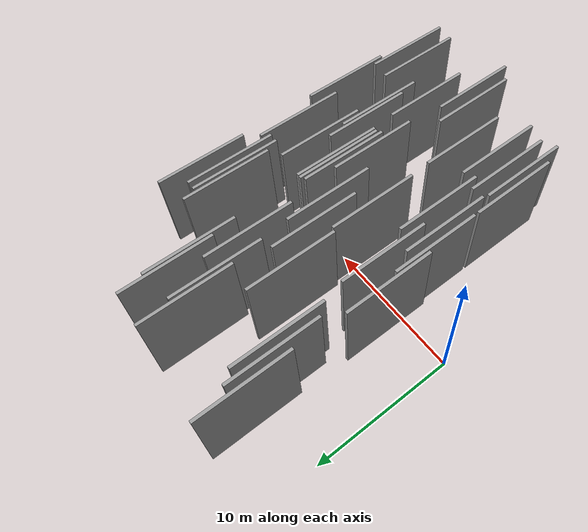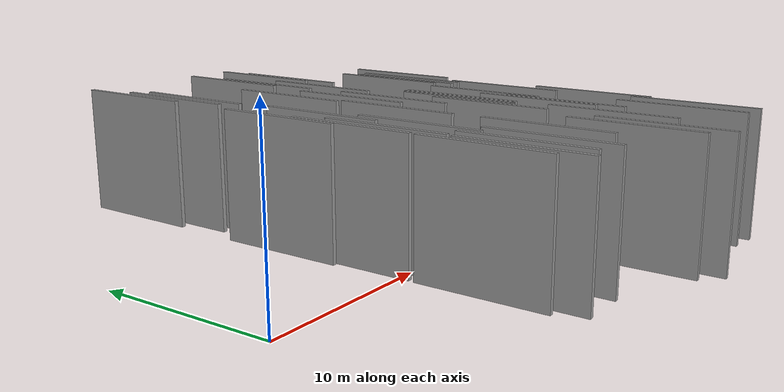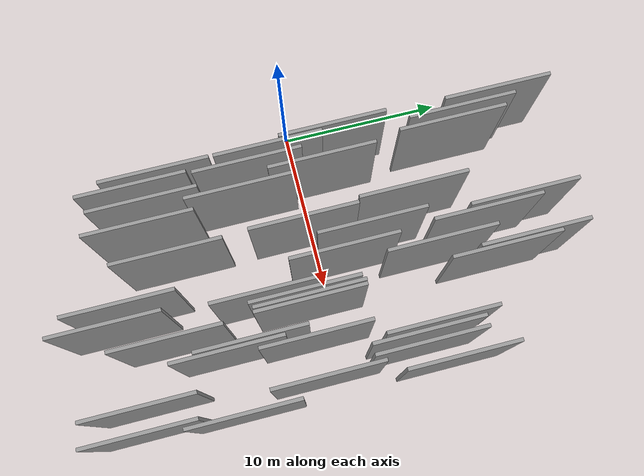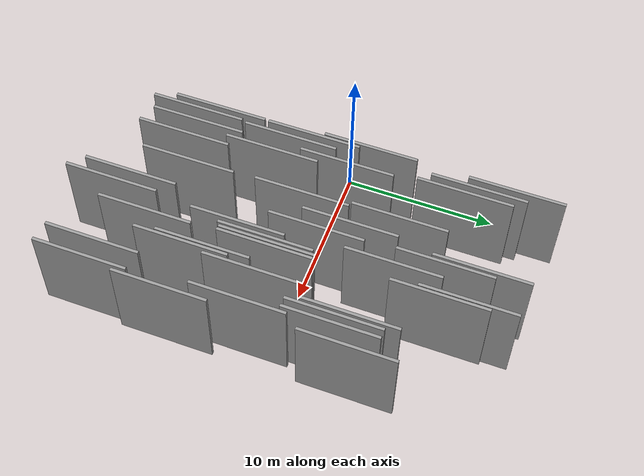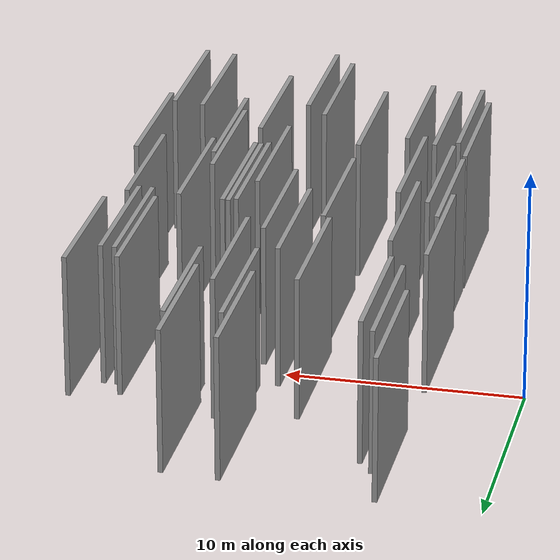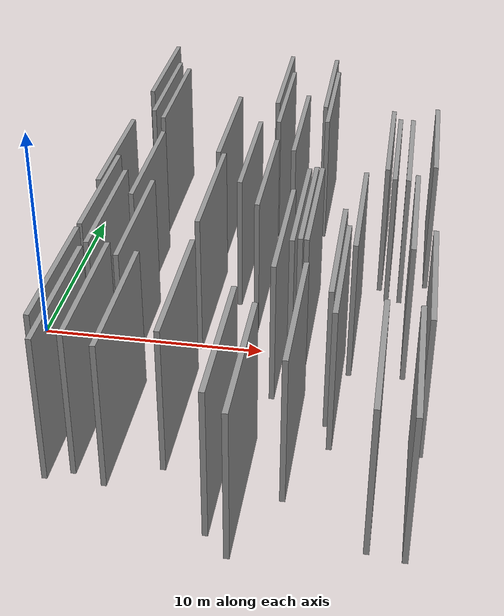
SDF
<sdf version="1.6">
 <world name="default">
  <scene>
   <sky><clouds><speed>12</speed></clouds></sky>
   <ambient>0.4 0.4 0.4 1</ambient>
   <background>0.7 0.7 0.7 1</background>
   <shadows>1</shadows>
  </scene>
  <gravity>0 0 -9.8066</gravity>
  <magnetic_field>6e-06 2.3e-05 -4.2e-05</magnetic_field>
  <physics default="0" name="default_physics" type="ode">
   <ode>
    <solver>
     <type>quick</type>
     <iters>10</iters>
     <sor>1.0</sor>
     <use_dynamic_moi_rescaling>0</use_dynamic_moi_rescaling>
    </solver>
    <constraints>
     <cfm>0</cfm>
     <erp>0.2</erp>
     <contact_max_correcting_vel>100</contact_max_correcting_vel>
     <contact_surface_layer>0.001</contact_surface_layer>
    </constraints>
   </ode>
   <max_step_size>0.004</max_step_size>
   <real_time_factor>1</real_time_factor>
   <real_time_update_rate>250</real_time_update_rate>
  </physics>
  <light name="sun" type="directional">
   <pose>0 0 10 0 0 0</pose>
   <diffuse>0.8 0.8 0.8 1</diffuse>
   <specular>0.2 0.2 0.2 1</specular>
   <attenuation>
    <range>1000</range>
    <constant>0.9</constant>
    <linear>0.01</linear>
    <quadratic>0.001</quadratic>
   </attenuation>
   <direction>-0.5 0.1 -0.9</direction>
  </light>
  <model name="grey_wall_1">
   <static>1</static>
   <pose>11.6903 -1.4165 2.5 0.000000 0.000000 1.570796</pose>
   <link name="link">
    <pose>0 0 3.00 0 0 0</pose>
    <collision name="collision"><geometry><box><size>6.00 0.2 6.00</size></box></geometry></collision>
    <visual name="visual">
     <cast_shadows>0</cast_shadows>
     <geometry><box><size>6.00 0.2 6.00</size></box></geometry>
     <material>
      <script>
       <uri>model://grey_wall/materials/scripts</uri>
       <uri>model://grey_wall/materials/textures</uri>
       <name>vrc/grey_wall</name>
      </script>
     </material>
    </visual>
   </link>
  </model>
  <model name="grey_wall_2">
   <static>1</static>
   <pose>12.2253 -1.2683 2.5 0.000000 0.000000 1.570796</pose>
   <link name="link">
    <pose>0 0 3.00 0 0 0</pose>
    <collision name="collision"><geometry><box><size>6.00 0.2 6.00</size></box></geometry></collision>
    <visual name="visual">
     <cast_shadows>0</cast_shadows>
     <geometry><box><size>6.00 0.2 6.00</size></box></geometry>
     <material>
      <script>
       <uri>model://grey_wall/materials/scripts</uri>
       <uri>model://grey_wall/materials/textures</uri>
       <name>vrc/grey_wall</name>
      </script>
     </material>
    </visual>
   </link>
  </model>
  <model name="grey_wall_3">
   <static>1</static>
   <pose>14.9225 4.9758 2.5 0.000000 0.000000 1.570796</pose>
   <link name="link">
    <pose>0 0 3.00 0 0 0</pose>
    <collision name="collision"><geometry><box><size>6.00 0.2 6.00</size></box></geometry></collision>
    <visual name="visual">
     <cast_shadows>0</cast_shadows>
     <geometry><box><size>6.00 0.2 6.00</size></box></geometry>
     <material>
      <script>
       <uri>model://grey_wall/materials/scripts</uri>
       <uri>model://grey_wall/materials/textures</uri>
       <name>vrc/grey_wall</name>
      </script>
     </material>
    </visual>
   </link>
  </model>
  <model name="grey_wall_4">
   <static>1</static>
   <pose>8.9996 2.8847 2.5 0.000000 0.000000 1.570796</pose>
   <link name="link">
    <pose>0 0 3.00 0 0 0</pose>
    <collision name="collision"><geometry><box><size>6.00 0.2 6.00</size></box></geometry></collision>
    <visual name="visual">
     <cast_shadows>0</cast_shadows>
     <geometry><box><size>6.00 0.2 6.00</size></box></geometry>
     <material>
      <script>
       <uri>model://grey_wall/materials/scripts</uri>
       <uri>model://grey_wall/materials/textures</uri>
       <name>vrc/grey_wall</name>
      </script>
     </material>
    </visual>
   </link>
  </model>
  <model name="grey_wall_5">
   <static>1</static>
   <pose>11.9767 9.3060 2.5 0.000000 0.000000 1.570796</pose>
   <link name="link">
    <pose>0 0 3.00 0 0 0</pose>
    <collision name="collision"><geometry><box><size>6.00 0.2 6.00</size></box></geometry></collision>
    <visual name="visual">
     <cast_shadows>0</cast_shadows>
     <geometry><box><size>6.00 0.2 6.00</size></box></geometry>
     <material>
      <script>
       <uri>model://grey_wall/materials/scripts</uri>
       <uri>model://grey_wall/materials/textures</uri>
       <name>vrc/grey_wall</name>
      </script>
     </material>
    </visual>
   </link>
  </model>
  <model name="grey_wall_6">
   <static>1</static>
   <pose>16.9105 5.4805 2.5 0.000000 0.000000 1.570796</pose>
   <link name="link">
    <pose>0 0 3.00 0 0 0</pose>
    <collision name="collision"><geometry><box><size>6.00 0.2 6.00</size></box></geometry></collision>
    <visual name="visual">
     <cast_shadows>0</cast_shadows>
     <geometry><box><size>6.00 0.2 6.00</size></box></geometry>
     <material>
      <script>
       <uri>model://grey_wall/materials/scripts</uri>
       <uri>model://grey_wall/materials/textures</uri>
       <name>vrc/grey_wall</name>
      </script>
     </material>
    </visual>
   </link>
  </model>
  <model name="grey_wall_7">
   <static>1</static>
   <pose>10.0815 -10.8257 2.5 0.000000 0.000000 1.570796</pose>
   <link name="link">
    <pose>0 0 3.00 0 0 0</pose>
    <collision name="collision"><geometry><box><size>6.00 0.2 6.00</size></box></geometry></collision>
    <visual name="visual">
     <cast_shadows>0</cast_shadows>
     <geometry><box><size>6.00 0.2 6.00</size></box></geometry>
     <material>
      <script>
       <uri>model://grey_wall/materials/scripts</uri>
       <uri>model://grey_wall/materials/textures</uri>
       <name>vrc/grey_wall</name>
      </script>
     </material>
    </visual>
   </link>
  </model>
  <model name="grey_wall_8">
   <static>1</static>
   <pose>4.5151 8.5991 2.5 0.000000 0.000000 1.570796</pose>
   <link name="link">
    <pose>0 0 3.00 0 0 0</pose>
    <collision name="collision"><geometry><box><size>6.00 0.2 6.00</size></box></geometry></collision>
    <visual name="visual">
     <cast_shadows>0</cast_shadows>
     <geometry><box><size>6.00 0.2 6.00</size></box></geometry>
     <material>
      <script>
       <uri>model://grey_wall/materials/scripts</uri>
       <uri>model://grey_wall/materials/textures</uri>
       <name>vrc/grey_wall</name>
      </script>
     </material>
    </visual>
   </link>
  </model>
  <model name="grey_wall_9">
   <static>1</static>
   <pose>15.8232 4.1198 2.5 0.000000 0.000000 1.570796</pose>
   <link name="link">
    <pose>0 0 3.00 0 0 0</pose>
    <collision name="collision"><geometry><box><size>6.00 0.2 6.00</size></box></geometry></collision>
    <visual name="visual">
     <cast_shadows>0</cast_shadows>
     <geometry><box><size>6.00 0.2 6.00</size></box></geometry>
     <material>
      <script>
       <uri>model://grey_wall/materials/scripts</uri>
       <uri>model://grey_wall/materials/textures</uri>
       <name>vrc/grey_wall</name>
      </script>
     </material>
    </visual>
   </link>
  </model>
  <model name="grey_wall_10">
   <static>1</static>
   <pose>9.4727 11.0734 2.5 0.000000 0.000000 1.570796</pose>
   <link name="link">
    <pose>0 0 3.00 0 0 0</pose>
    <collision name="collision"><geometry><box><size>6.00 0.2 6.00</size></box></geometry></collision>
    <visual name="visual">
     <cast_shadows>0</cast_shadows>
     <geometry><box><size>6.00 0.2 6.00</size></box></geometry>
     <material>
      <script>
       <uri>model://grey_wall/materials/scripts</uri>
       <uri>model://grey_wall/materials/textures</uri>
       <name>vrc/grey_wall</name>
      </script>
     </material>
    </visual>
   </link>
  </model>
  <model name="grey_wall_11">
   <static>1</static>
   <pose>4.1188 -2.7381 2.5 0.000000 0.000000 1.570796</pose>
   <link name="link">
    <pose>0 0 3.00 0 0 0</pose>
    <collision name="collision"><geometry><box><size>6.00 0.2 6.00</size></box></geometry></collision>
    <visual name="visual">
     <cast_shadows>0</cast_shadows>
     <geometry><box><size>6.00 0.2 6.00</size></box></geometry>
     <material>
      <script>
       <uri>model://grey_wall/materials/scripts</uri>
       <uri>model://grey_wall/materials/textures</uri>
       <name>vrc/grey_wall</name>
      </script>
     </material>
    </visual>
   </link>
  </model>
  <model name="grey_wall_12">
   <static>1</static>
   <pose>3.2301 2.2058 2.5 0.000000 0.000000 1.570796</pose>
   <link name="link">
    <pose>0 0 3.00 0 0 0</pose>
    <collision name="collision"><geometry><box><size>6.00 0.2 6.00</size></box></geometry></collision>
    <visual name="visual">
     <cast_shadows>0</cast_shadows>
     <geometry><box><size>6.00 0.2 6.00</size></box></geometry>
     <material>
      <script>
       <uri>model://grey_wall/materials/scripts</uri>
       <uri>model://grey_wall/materials/textures</uri>
       <name>vrc/grey_wall</name>
      </script>
     </material>
    </visual>
   </link>
  </model>
  <model name="grey_wall_13">
   <static>1</static>
   <pose>10.9553 -11.7055 2.5 0.000000 0.000000 1.570796</pose>
   <link name="link">
    <pose>0 0 3.00 0 0 0</pose>
    <collision name="collision"><geometry><box><size>6.00 0.2 6.00</size></box></geometry></collision>
    <visual name="visual">
     <cast_shadows>0</cast_shadows>
     <geometry><box><size>6.00 0.2 6.00</size></box></geometry>
     <material>
      <script>
       <uri>model://grey_wall/materials/scripts</uri>
       <uri>model://grey_wall/materials/textures</uri>
       <name>vrc/grey_wall</name>
      </script>
     </material>
    </visual>
   </link>
  </model>
  <model name="grey_wall_14">
   <static>1</static>
   <pose>11.2573 -3.3548 2.5 0.000000 0.000000 1.570796</pose>
   <link name="link">
    <pose>0 0 3.00 0 0 0</pose>
    <collision name="collision"><geometry><box><size>6.00 0.2 6.00</size></box></geometry></collision>
    <visual name="visual">
     <cast_shadows>0</cast_shadows>
     <geometry><box><size>6.00 0.2 6.00</size></box></geometry>
     <material>
      <script>
       <uri>model://grey_wall/materials/scripts</uri>
       <uri>model://grey_wall/materials/textures</uri>
       <name>vrc/grey_wall</name>
      </script>
     </material>
    </visual>
   </link>
  </model>
  <model name="grey_wall_15">
   <static>1</static>
   <pose>3.3561 11.4859 2.5 0.000000 0.000000 1.570796</pose>
   <link name="link">
    <pose>0 0 3.00 0 0 0</pose>
    <collision name="collision"><geometry><box><size>6.00 0.2 6.00</size></box></geometry></collision>
    <visual name="visual">
     <cast_shadows>0</cast_shadows>
     <geometry><box><size>6.00 0.2 6.00</size></box></geometry>
     <material>
      <script>
       <uri>model://grey_wall/materials/scripts</uri>
       <uri>model://grey_wall/materials/textures</uri>
       <name>vrc/grey_wall</name>
      </script>
     </material>
    </visual>
   </link>
  </model>
  <model name="grey_wall_16">
   <static>1</static>
   <pose>4.8507 1.2138 2.5 0.000000 0.000000 1.570796</pose>
   <link name="link">
    <pose>0 0 3.00 0 0 0</pose>
    <collision name="collision"><geometry><box><size>6.00 0.2 6.00</size></box></geometry></collision>
    <visual name="visual">
     <cast_shadows>0</cast_shadows>
     <geometry><box><size>6.00 0.2 6.00</size></box></geometry>
     <material>
      <script>
       <uri>model://grey_wall/materials/scripts</uri>
       <uri>model://grey_wall/materials/textures</uri>
       <name>vrc/grey_wall</name>
      </script>
     </material>
    </visual>
   </link>
  </model>
  <model name="grey_wall_17">
   <static>1</static>
   <pose>3.4896 -1.4353 2.5 0.000000 0.000000 1.570796</pose>
   <link name="link">
    <pose>0 0 3.00 0 0 0</pose>
    <collision name="collision"><geometry><box><size>6.00 0.2 6.00</size></box></geometry></collision>
    <visual name="visual">
     <cast_shadows>0</cast_shadows>
     <geometry><box><size>6.00 0.2 6.00</size></box></geometry>
     <material>
      <script>
       <uri>model://grey_wall/materials/scripts</uri>
       <uri>model://grey_wall/materials/textures</uri>
       <name>vrc/grey_wall</name>
      </script>
     </material>
    </visual>
   </link>
  </model>
  <model name="grey_wall_18">
   <static>1</static>
   <pose>16.9978 -5.8208 2.5 0.000000 0.000000 1.570796</pose>
   <link name="link">
    <pose>0 0 3.00 0 0 0</pose>
    <collision name="collision"><geometry><box><size>6.00 0.2 6.00</size></box></geometry></collision>
    <visual name="visual">
     <cast_shadows>0</cast_shadows>
     <geometry><box><size>6.00 0.2 6.00</size></box></geometry>
     <material>
      <script>
       <uri>model://grey_wall/materials/scripts</uri>
       <uri>model://grey_wall/materials/textures</uri>
       <name>vrc/grey_wall</name>
      </script>
     </material>
    </visual>
   </link>
  </model>
  <model name="grey_wall_19">
   <static>1</static>
   <pose>15.4014 -10.8067 2.5 0.000000 0.000000 1.570796</pose>
   <link name="link">
    <pose>0 0 3.00 0 0 0</pose>
    <collision name="collision"><geometry><box><size>6.00 0.2 6.00</size></box></geometry></collision>
    <visual name="visual">
     <cast_shadows>0</cast_shadows>
     <geometry><box><size>6.00 0.2 6.00</size></box></geometry>
     <material>
      <script>
       <uri>model://grey_wall/materials/scripts</uri>
       <uri>model://grey_wall/materials/textures</uri>
       <name>vrc/grey_wall</name>
      </script>
     </material>
    </visual>
   </link>
  </model>
  <model name="grey_wall_20">
   <static>1</static>
   <pose>7.6432 5.5093 2.5 0.000000 0.000000 1.570796</pose>
   <link name="link">
    <pose>0 0 3.00 0 0 0</pose>
    <collision name="collision"><geometry><box><size>6.00 0.2 6.00</size></box></geometry></collision>
    <visual name="visual">
     <cast_shadows>0</cast_shadows>
     <geometry><box><size>6.00 0.2 6.00</size></box></geometry>
     <material>
      <script>
       <uri>model://grey_wall/materials/scripts</uri>
       <uri>model://grey_wall/materials/textures</uri>
       <name>vrc/grey_wall</name>
      </script>
     </material>
    </visual>
   </link>
  </model>
  <model name="grey_wall_21">
   <static>1</static>
   <pose>9.9818 1.1198 2.5 0.000000 0.000000 1.570796</pose>
   <link name="link">
    <pose>0 0 3.00 0 0 0</pose>
    <collision name="collision"><geometry><box><size>6.00 0.2 6.00</size></box></geometry></collision>
    <visual name="visual">
     <cast_shadows>0</cast_shadows>
     <geometry><box><size>6.00 0.2 6.00</size></box></geometry>
     <material>
      <script>
       <uri>model://grey_wall/materials/scripts</uri>
       <uri>model://grey_wall/materials/textures</uri>
       <name>vrc/grey_wall</name>
      </script>
     </material>
    </visual>
   </link>
  </model>
  <model name="grey_wall_22">
   <static>1</static>
   <pose>6.1450 -9.0485 2.5 0.000000 0.000000 1.570796</pose>
   <link name="link">
    <pose>0 0 3.00 0 0 0</pose>
    <collision name="collision"><geometry><box><size>6.00 0.2 6.00</size></box></geometry></collision>
    <visual name="visual">
     <cast_shadows>0</cast_shadows>
     <geometry><box><size>6.00 0.2 6.00</size></box></geometry>
     <material>
      <script>
       <uri>model://grey_wall/materials/scripts</uri>
       <uri>model://grey_wall/materials/textures</uri>
       <name>vrc/grey_wall</name>
      </script>
     </material>
    </visual>
   </link>
  </model>
  <model name="grey_wall_23">
   <static>1</static>
   <pose>9.7930 8.9770 2.5 0.000000 0.000000 1.570796</pose>
   <link name="link">
    <pose>0 0 3.00 0 0 0</pose>
    <collision name="collision"><geometry><box><size>6.00 0.2 6.00</size></box></geometry></collision>
    <visual name="visual">
     <cast_shadows>0</cast_shadows>
     <geometry><box><size>6.00 0.2 6.00</size></box></geometry>
     <material>
      <script>
       <uri>model://grey_wall/materials/scripts</uri>
       <uri>model://grey_wall/materials/textures</uri>
       <name>vrc/grey_wall</name>
      </script>
     </material>
    </visual>
   </link>
  </model>
  <model name="grey_wall_24">
   <static>1</static>
   <pose>11.9800 -1.2423 2.5 0.000000 0.000000 1.570796</pose>
   <link name="link">
    <pose>0 0 3.00 0 0 0</pose>
    <collision name="collision"><geometry><box><size>6.00 0.2 6.00</size></box></geometry></collision>
    <visual name="visual">
     <cast_shadows>0</cast_shadows>
     <geometry><box><size>6.00 0.2 6.00</size></box></geometry>
     <material>
      <script>
       <uri>model://grey_wall/materials/scripts</uri>
       <uri>model://grey_wall/materials/textures</uri>
       <name>vrc/grey_wall</name>
      </script>
     </material>
    </visual>
   </link>
  </model>
  <model name="grey_wall_25">
   <static>1</static>
   <pose>4.9200 -8.6122 2.5 0.000000 0.000000 1.570796</pose>
   <link name="link">
    <pose>0 0 3.00 0 0 0</pose>
    <collision name="collision"><geometry><box><size>6.00 0.2 6.00</size></box></geometry></collision>
    <visual name="visual">
     <cast_shadows>0</cast_shadows>
     <geometry><box><size>6.00 0.2 6.00</size></box></geometry>
     <material>
      <script>
       <uri>model://grey_wall/materials/scripts</uri>
       <uri>model://grey_wall/materials/textures</uri>
       <name>vrc/grey_wall</name>
      </script>
     </material>
    </visual>
   </link>
  </model>
  <model name="grey_wall_26">
   <static>1</static>
   <pose>10.8203 6.1597 2.5 0.000000 0.000000 1.570796</pose>
   <link name="link">
    <pose>0 0 3.00 0 0 0</pose>
    <collision name="collision"><geometry><box><size>6.00 0.2 6.00</size></box></geometry></collision>
    <visual name="visual">
     <cast_shadows>0</cast_shadows>
     <geometry><box><size>6.00 0.2 6.00</size></box></geometry>
     <material>
      <script>
       <uri>model://grey_wall/materials/scripts</uri>
       <uri>model://grey_wall/materials/textures</uri>
       <name>vrc/grey_wall</name>
      </script>
     </material>
    </visual>
   </link>
  </model>
  <model name="grey_wall_27">
   <static>1</static>
   <pose>16.6629 -10.9950 2.5 0.000000 0.000000 1.570796</pose>
   <link name="link">
    <pose>0 0 3.00 0 0 0</pose>
    <collision name="collision"><geometry><box><size>6.00 0.2 6.00</size></box></geometry></collision>
    <visual name="visual">
     <cast_shadows>0</cast_shadows>
     <geometry><box><size>6.00 0.2 6.00</size></box></geometry>
     <material>
      <script>
       <uri>model://grey_wall/materials/scripts</uri>
       <uri>model://grey_wall/materials/textures</uri>
       <name>vrc/grey_wall</name>
      </script>
     </material>
    </visual>
   </link>
  </model>
  <model name="grey_wall_28">
   <static>1</static>
   <pose>7.9140 -0.5604 2.5 0.000000 0.000000 1.570796</pose>
   <link name="link">
    <pose>0 0 3.00 0 0 0</pose>
    <collision name="collision"><geometry><box><size>6.00 0.2 6.00</size></box></geometry></collision>
    <visual name="visual">
     <cast_shadows>0</cast_shadows>
     <geometry><box><size>6.00 0.2 6.00</size></box></geometry>
     <material>
      <script>
       <uri>model://grey_wall/materials/scripts</uri>
       <uri>model://grey_wall/materials/textures</uri>
       <name>vrc/grey_wall</name>
      </script>
     </material>
    </visual>
   </link>
  </model>
  <model name="grey_wall_29">
   <static>1</static>
   <pose>5.4491 -3.4583 2.5 0.000000 0.000000 1.570796</pose>
   <link name="link">
    <pose>0 0 3.00 0 0 0</pose>
    <collision name="collision"><geometry><box><size>6.00 0.2 6.00</size></box></geometry></collision>
    <visual name="visual">
     <cast_shadows>0</cast_shadows>
     <geometry><box><size>6.00 0.2 6.00</size></box></geometry>
     <material>
      <script>
       <uri>model://grey_wall/materials/scripts</uri>
       <uri>model://grey_wall/materials/textures</uri>
       <name>vrc/grey_wall</name>
      </script>
     </material>
    </visual>
   </link>
  </model>
  <model name="grey_wall_30">
   <static>1</static>
   <pose>13.4690 -4.6626 2.5 0.000000 0.000000 1.570796</pose>
   <link name="link">
    <pose>0 0 3.00 0 0 0</pose>
    <collision name="collision"><geometry><box><size>6.00 0.2 6.00</size></box></geometry></collision>
    <visual name="visual">
     <cast_shadows>0</cast_shadows>
     <geometry><box><size>6.00 0.2 6.00</size></box></geometry>
     <material>
      <script>
       <uri>model://grey_wall/materials/scripts</uri>
       <uri>model://grey_wall/materials/textures</uri>
       <name>vrc/grey_wall</name>
      </script>
     </material>
    </visual>
   </link>
  </model>
  <model name="grey_wall_31">
   <static>1</static>
   <pose>13.7162 -5.9307 2.5 0.000000 0.000000 1.570796</pose>
   <link name="link">
    <pose>0 0 3.00 0 0 0</pose>
    <collision name="collision"><geometry><box><size>6.00 0.2 6.00</size></box></geometry></collision>
    <visual name="visual">
     <cast_shadows>0</cast_shadows>
     <geometry><box><size>6.00 0.2 6.00</size></box></geometry>
     <material>
      <script>
       <uri>model://grey_wall/materials/scripts</uri>
       <uri>model://grey_wall/materials/textures</uri>
       <name>vrc/grey_wall</name>
      </script>
     </material>
    </visual>
   </link>
  </model>
  <model name="grey_wall_32">
   <static>1</static>
   <pose>12.3942 -8.8341 2.5 0.000000 0.000000 1.570796</pose>
   <link name="link">
    <pose>0 0 3.00 0 0 0</pose>
    <collision name="collision"><geometry><box><size>6.00 0.2 6.00</size></box></geometry></collision>
    <visual name="visual">
     <cast_shadows>0</cast_shadows>
     <geometry><box><size>6.00 0.2 6.00</size></box></geometry>
     <material>
      <script>
       <uri>model://grey_wall/materials/scripts</uri>
       <uri>model://grey_wall/materials/textures</uri>
       <name>vrc/grey_wall</name>
      </script>
     </material>
    </visual>
   </link>
  </model>
  <model name="grey_wall_33">
   <static>1</static>
   <pose>16.1943 -1.3300 2.5 0.000000 0.000000 1.570796</pose>
   <link name="link">
    <pose>0 0 3.00 0 0 0</pose>
    <collision name="collision"><geometry><box><size>6.00 0.2 6.00</size></box></geometry></collision>
    <visual name="visual">
     <cast_shadows>0</cast_shadows>
     <geometry><box><size>6.00 0.2 6.00</size></box></geometry>
     <material>
      <script>
       <uri>model://grey_wall/materials/scripts</uri>
       <uri>model://grey_wall/materials/textures</uri>
       <name>vrc/grey_wall</name>
      </script>
     </material>
    </visual>
   </link>
  </model>
  <model name="grey_wall_34">
   <static>1</static>
   <pose>8.0119 -7.9248 2.5 0.000000 0.000000 1.570796</pose>
   <link name="link">
    <pose>0 0 3.00 0 0 0</pose>
    <collision name="collision"><geometry><box><size>6.00 0.2 6.00</size></box></geometry></collision>
    <visual name="visual">
     <cast_shadows>0</cast_shadows>
     <geometry><box><size>6.00 0.2 6.00</size></box></geometry>
     <material>
      <script>
       <uri>model://grey_wall/materials/scripts</uri>
       <uri>model://grey_wall/materials/textures</uri>
       <name>vrc/grey_wall</name>
      </script>
     </material>
    </visual>
   </link>
  </model>
  <model name="grey_wall_35">
   <static>1</static>
   <pose>3.9270 9.3092 2.5 0.000000 0.000000 1.570796</pose>
   <link name="link">
    <pose>0 0 3.00 0 0 0</pose>
    <collision name="collision"><geometry><box><size>6.00 0.2 6.00</size></box></geometry></collision>
    <visual name="visual">
     <cast_shadows>0</cast_shadows>
     <geometry><box><size>6.00 0.2 6.00</size></box></geometry>
     <material>
      <script>
       <uri>model://grey_wall/materials/scripts</uri>
       <uri>model://grey_wall/materials/textures</uri>
       <name>vrc/grey_wall</name>
      </script>
     </material>
    </visual>
   </link>
  </model>
  <model name="grey_wall_36">
   <static>1</static>
   <pose>15.2591 4.1340 2.5 0.000000 0.000000 1.570796</pose>
   <link name="link">
    <pose>0 0 3.00 0 0 0</pose>
    <collision name="collision"><geometry><box><size>6.00 0.2 6.00</size></box></geometry></collision>
    <visual name="visual">
     <cast_shadows>0</cast_shadows>
     <geometry><box><size>6.00 0.2 6.00</size></box></geometry>
     <material>
      <script>
       <uri>model://grey_wall/materials/scripts</uri>
       <uri>model://grey_wall/materials/textures</uri>
       <name>vrc/grey_wall</name>
      </script>
     </material>
    </visual>
   </link>
  </model>
  <model name="grey_wall_37">
   <static>1</static>
   <pose>3.9854 -9.0127 2.5 0.000000 0.000000 1.570796</pose>
   <link name="link">
    <pose>0 0 3.00 0 0 0</pose>
    <collision name="collision"><geometry><box><size>6.00 0.2 6.00</size></box></geometry></collision>
    <visual name="visual">
     <cast_shadows>0</cast_shadows>
     <geometry><box><size>6.00 0.2 6.00</size></box></geometry>
     <material>
      <script>
       <uri>model://grey_wall/materials/scripts</uri>
       <uri>model://grey_wall/materials/textures</uri>
       <name>vrc/grey_wall</name>
      </script>
     </material>
    </visual>
   </link>
  </model>
  <model name="grey_wall_38">
   <static>1</static>
   <pose>3.4730 -7.6782 2.5 0.000000 0.000000 1.570796</pose>
   <link name="link">
    <pose>0 0 3.00 0 0 0</pose>
    <collision name="collision"><geometry><box><size>6.00 0.2 6.00</size></box></geometry></collision>
    <visual name="visual">
     <cast_shadows>0</cast_shadows>
     <geometry><box><size>6.00 0.2 6.00</size></box></geometry>
     <material>
      <script>
       <uri>model://grey_wall/materials/scripts</uri>
       <uri>model://grey_wall/materials/textures</uri>
       <name>vrc/grey_wall</name>
      </script>
     </material>
    </visual>
   </link>
  </model>
  <model name="grey_wall_39">
   <static>1</static>
   <pose>14.0693 -1.4155 2.5 0.000000 0.000000 1.570796</pose>
   <link name="link">
    <pose>0 0 3.00 0 0 0</pose>
    <collision name="collision"><geometry><box><size>6.00 0.2 6.00</size></box></geometry></collision>
    <visual name="visual">
     <cast_shadows>0</cast_shadows>
     <geometry><box><size>6.00 0.2 6.00</size></box></geometry>
     <material>
      <script>
       <uri>model://grey_wall/materials/scripts</uri>
       <uri>model://grey_wall/materials/textures</uri>
       <name>vrc/grey_wall</name>
      </script>
     </material>
    </visual>
   </link>
  </model>
  <model name="grey_wall_40">
   <static>1</static>
   <pose>11.7365 10.9322 2.5 0.000000 0.000000 1.570796</pose>
   <link name="link">
    <pose>0 0 3.00 0 0 0</pose>
    <collision name="collision"><geometry><box><size>6.00 0.2 6.00</size></box></geometry></collision>
    <visual name="visual">
     <cast_shadows>0</cast_shadows>
     <geometry><box><size>6.00 0.2 6.00</size></box></geometry>
     <material>
      <script>
       <uri>model://grey_wall/materials/scripts</uri>
       <uri>model://grey_wall/materials/textures</uri>
       <name>vrc/grey_wall</name>
      </script>
     </material>
    </visual>
   </link>
  </model>
 </world>
</sdf>
